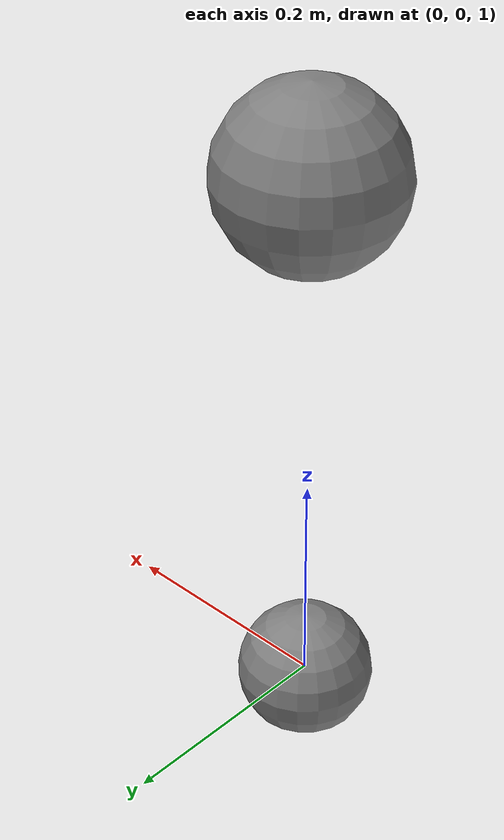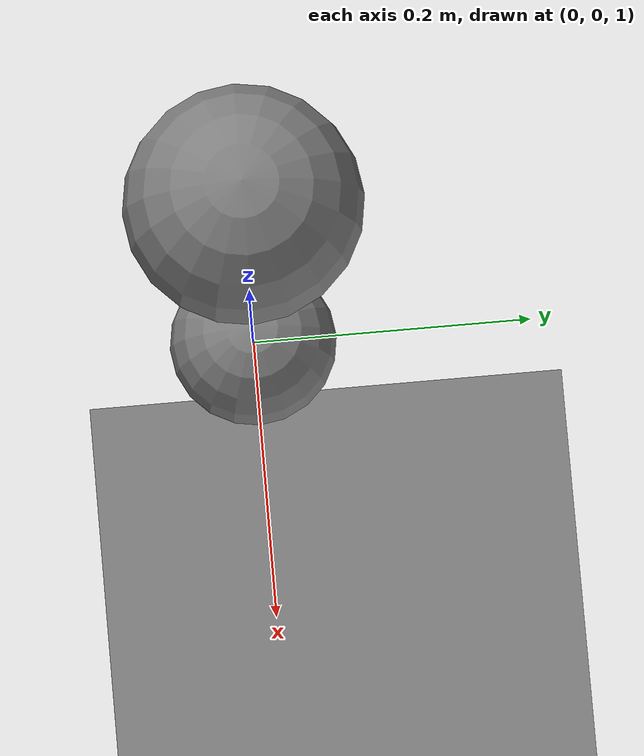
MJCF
<mujoco model="distance-stress-test">
          <compiler angle="radian"/>
          <option gravity="0 0 -9.81" timestep="0.001" solver="Newton"
                  iterations="50" tolerance="1e-10">
            <flag energy="enable"/>
          </option>
          <worldbody>
            <geom name="ground" type="plane" size="2 2 0.01"/>

            <body name="sphere_a" pos="0 0 1.5">
              <freejoint/>
              <geom name="ga" type="sphere" size="0.08" mass="1.0"/>
            </body>
            <body name="sphere_b" pos="0 0 1.0">
              <freejoint/>
              <geom name="gb" type="sphere" size="0.06" mass="0.5"/>
            </body>
          </worldbody>
          <equality>
            <distance geom1="ga" geom2="gb" distance="0.5" solref="0.005 1.0"/>
          </equality>
        </mujoco>
